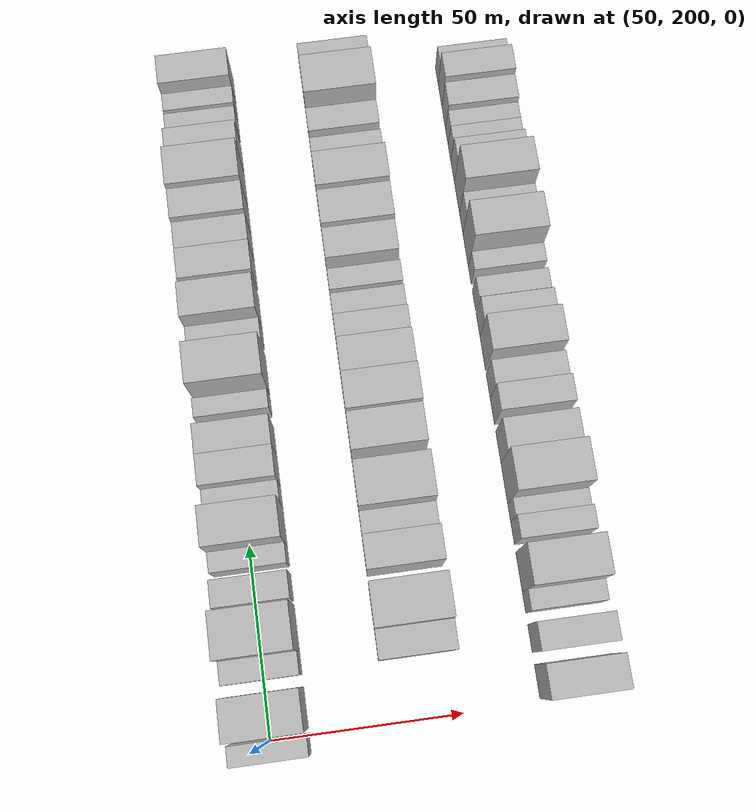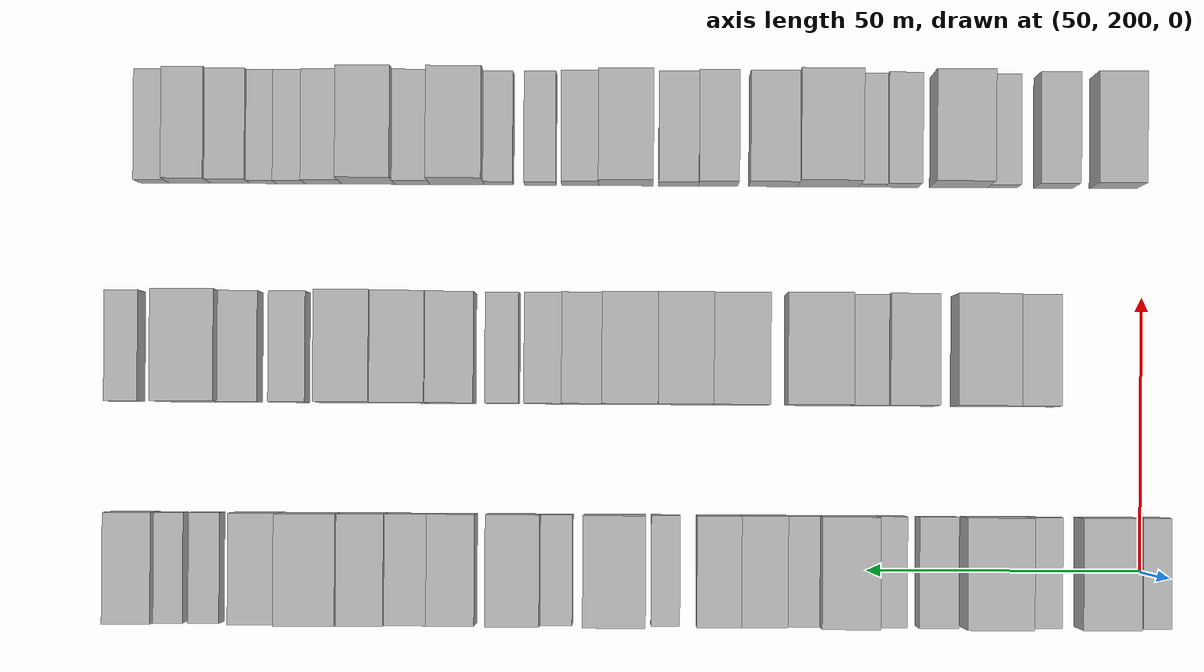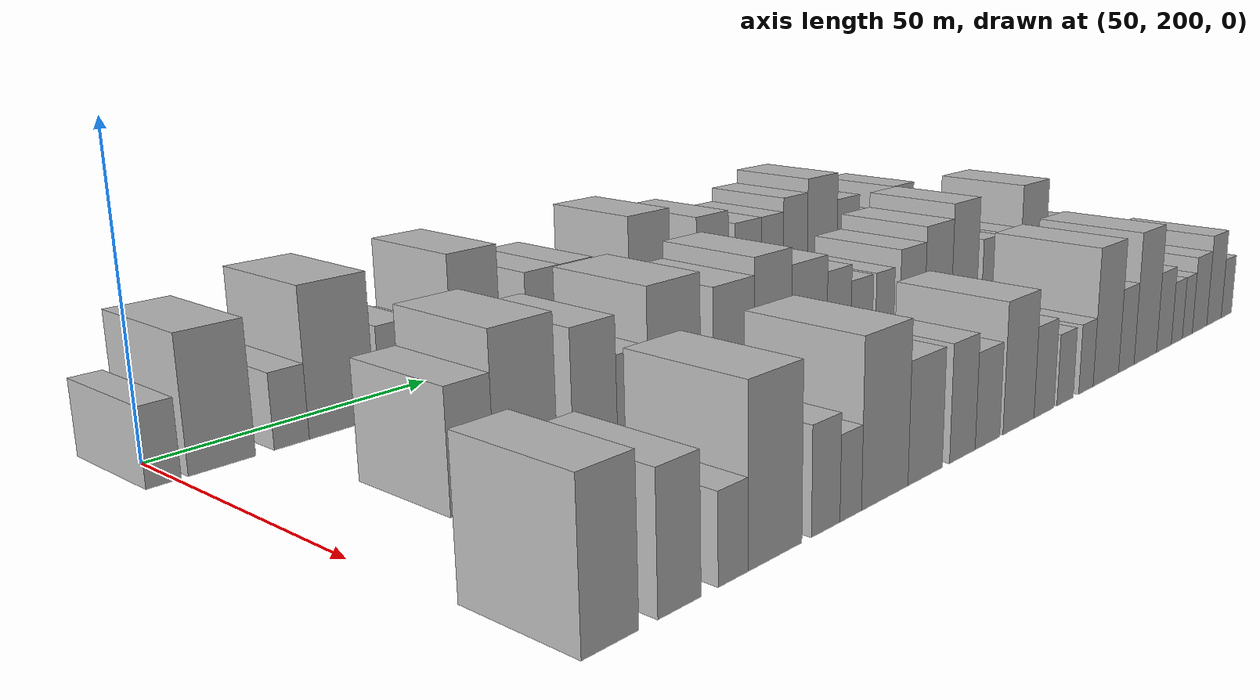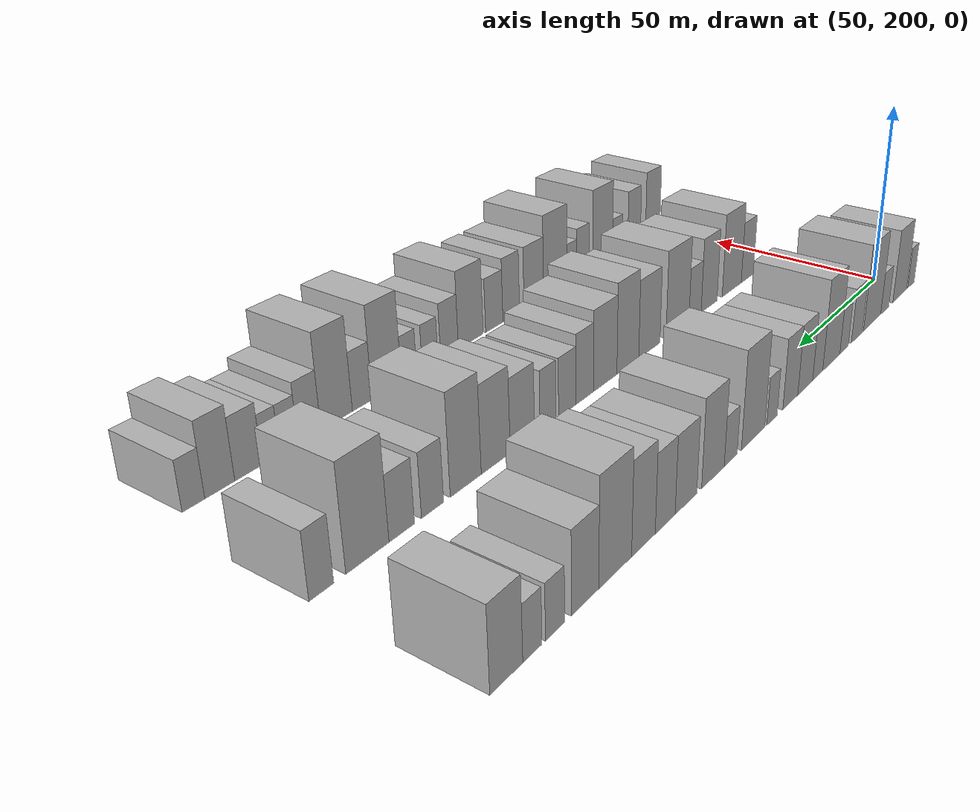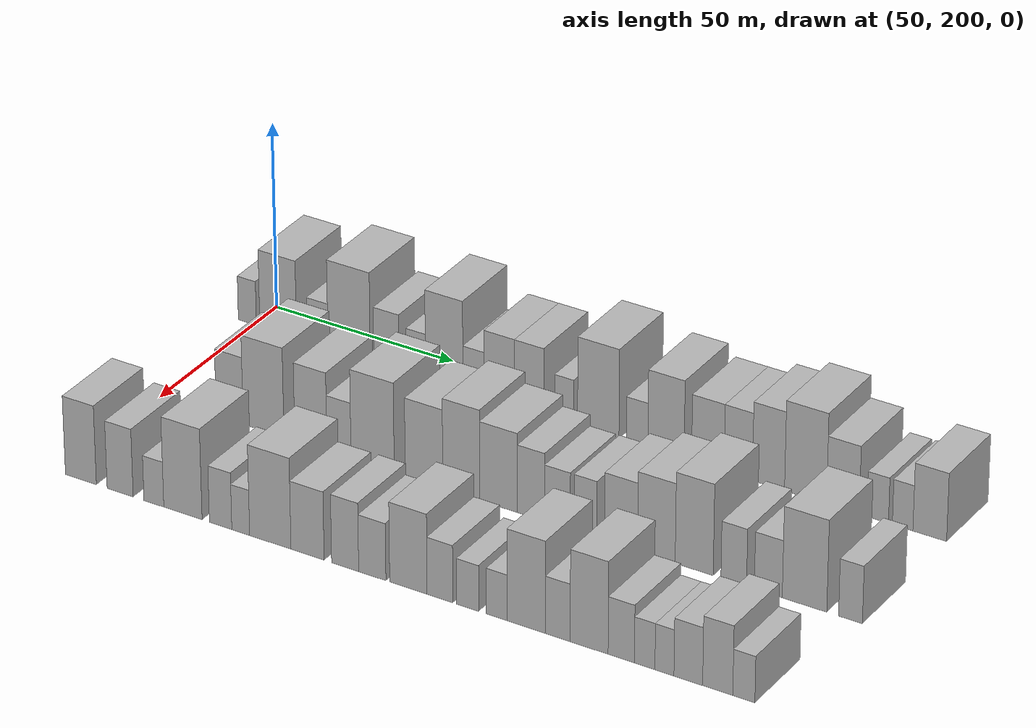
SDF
<sdf version="1.6">
 <world name="default">
  <model name="building_67">
   <static>1</static>
   <pose>50.0000 198.0790 0 0.000000 0.000000 0.000000</pose>
   <link name="link">
    <pose>0 0 6.00 0 0 0</pose>
    <collision name="collision"><geometry><box><size>20.0000 5.1604 12.0000</size></box></geometry></collision>
    <visual name="visual">
     <cast_shadows>0</cast_shadows>
     <geometry><box><size>20.0000 5.1604 12.0000</size></box></geometry>
     <material>
      <script>
       <uri>model://HANNAS_wall/materials/scripts</uri>
       <uri>model://HANNAS_wall/materials/textures</uri>
       <name>vrc/HANNAS_wall</name>
      </script>
     </material>
    </visual>
   </link>
  </model>
  <model name="building_68">
   <static>1</static>
   <pose>50.0000 206.9071 0 0.000000 0.000000 0.000000</pose>
   <link name="link">
    <pose>0 0 10.50 0 0 0</pose>
    <collision name="collision"><geometry><box><size>20.0000 10.4958 21.0000</size></box></geometry></collision>
    <visual name="visual">
     <cast_shadows>0</cast_shadows>
     <geometry><box><size>20.0000 10.4958 21.0000</size></box></geometry>
     <material>
      <script>
       <uri>model://HANNAS_wall/materials/scripts</uri>
       <uri>model://HANNAS_wall/materials/textures</uri>
       <name>vrc/HANNAS_wall</name>
      </script>
     </material>
    </visual>
   </link>
  </model>
  <model name="building_69">
   <static>1</static>
   <pose>50.0000 218.1254 0 0.000000 0.000000 0.000000</pose>
   <link name="link">
    <pose>0 0 6.00 0 0 0</pose>
    <collision name="collision"><geometry><box><size>20.0000 5.9407 12.0000</size></box></geometry></collision>
    <visual name="visual">
     <cast_shadows>0</cast_shadows>
     <geometry><box><size>20.0000 5.9407 12.0000</size></box></geometry>
     <material>
      <script>
       <uri>model://HANNAS_wall/materials/scripts</uri>
       <uri>model://HANNAS_wall/materials/textures</uri>
       <name>vrc/HANNAS_wall</name>
      </script>
     </material>
    </visual>
   </link>
  </model>
  <model name="building_70">
   <static>1</static>
   <pose>50.0000 227.0674 0 0.000000 0.000000 0.000000</pose>
   <link name="link">
    <pose>0 0 12.00 0 0 0</pose>
    <collision name="collision"><geometry><box><size>20.0000 11.9434 24.0000</size></box></geometry></collision>
    <visual name="visual">
     <cast_shadows>0</cast_shadows>
     <geometry><box><size>20.0000 11.9434 24.0000</size></box></geometry>
     <material>
      <script>
       <uri>model://HANNAS_wall/materials/scripts</uri>
       <uri>model://HANNAS_wall/materials/textures</uri>
       <name>vrc/HANNAS_wall</name>
      </script>
     </material>
    </visual>
   </link>
  </model>
  <model name="building_71">
   <static>1</static>
   <pose>50.0000 237.5869 0 0.000000 0.000000 0.000000</pose>
   <link name="link">
    <pose>0 0 7.50 0 0 0</pose>
    <collision name="collision"><geometry><box><size>20.0000 7.0956 15.0000</size></box></geometry></collision>
    <visual name="visual">
     <cast_shadows>0</cast_shadows>
     <geometry><box><size>20.0000 7.0956 15.0000</size></box></geometry>
     <material>
      <script>
       <uri>model://HANNAS_wall/materials/scripts</uri>
       <uri>model://HANNAS_wall/materials/textures</uri>
       <name>vrc/HANNAS_wall</name>
      </script>
     </material>
    </visual>
   </link>
  </model>
  <model name="building_72">
   <static>1</static>
   <pose>50.0000 245.8186 0 0.000000 0.000000 0.000000</pose>
   <link name="link">
    <pose>0 0 6.00 0 0 0</pose>
    <collision name="collision"><geometry><box><size>20.0000 5.3678 12.0000</size></box></geometry></collision>
    <visual name="visual">
     <cast_shadows>0</cast_shadows>
     <geometry><box><size>20.0000 5.3678 12.0000</size></box></geometry>
     <material>
      <script>
       <uri>model://HANNAS_wall/materials/scripts</uri>
       <uri>model://HANNAS_wall/materials/textures</uri>
       <name>vrc/HANNAS_wall</name>
      </script>
     </material>
    </visual>
   </link>
  </model>
  <model name="building_73">
   <static>1</static>
   <pose>50.0000 253.7035 0 0.000000 0.000000 0.000000</pose>
   <link name="link">
    <pose>0 0 12.00 0 0 0</pose>
    <collision name="collision"><geometry><box><size>20.0000 10.4022 24.0000</size></box></geometry></collision>
    <visual name="visual">
     <cast_shadows>0</cast_shadows>
     <geometry><box><size>20.0000 10.4022 24.0000</size></box></geometry>
     <material>
      <script>
       <uri>model://HANNAS_wall/materials/scripts</uri>
       <uri>model://HANNAS_wall/materials/textures</uri>
       <name>vrc/HANNAS_wall</name>
      </script>
     </material>
    </visual>
   </link>
  </model>
  <model name="building_74">
   <static>1</static>
   <pose>50.0000 261.8528 0 0.000000 0.000000 0.000000</pose>
   <link name="link">
    <pose>0 0 6.00 0 0 0</pose>
    <collision name="collision"><geometry><box><size>20.0000 5.8964 12.0000</size></box></geometry></collision>
    <visual name="visual">
     <cast_shadows>0</cast_shadows>
     <geometry><box><size>20.0000 5.8964 12.0000</size></box></geometry>
     <material>
      <script>
       <uri>model://HANNAS_wall/materials/scripts</uri>
       <uri>model://HANNAS_wall/materials/textures</uri>
       <name>vrc/HANNAS_wall</name>
      </script>
     </material>
    </visual>
   </link>
  </model>
  <model name="building_75">
   <static>1</static>
   <pose>50.0000 268.9595 0 0.000000 0.000000 0.000000</pose>
   <link name="link">
    <pose>0 0 9.00 0 0 0</pose>
    <collision name="collision"><geometry><box><size>20.0000 8.3169 18.0000</size></box></geometry></collision>
    <visual name="visual">
     <cast_shadows>0</cast_shadows>
     <geometry><box><size>20.0000 8.3169 18.0000</size></box></geometry>
     <material>
      <script>
       <uri>model://HANNAS_wall/materials/scripts</uri>
       <uri>model://HANNAS_wall/materials/textures</uri>
       <name>vrc/HANNAS_wall</name>
      </script>
     </material>
    </visual>
   </link>
  </model>
  <model name="building_76">
   <static>1</static>
   <pose>50.0000 277.1229 0 0.000000 0.000000 0.000000</pose>
   <link name="link">
    <pose>0 0 9.00 0 0 0</pose>
    <collision name="collision"><geometry><box><size>20.0000 8.0100 18.0000</size></box></geometry></collision>
    <visual name="visual">
     <cast_shadows>0</cast_shadows>
     <geometry><box><size>20.0000 8.0100 18.0000</size></box></geometry>
     <material>
      <script>
       <uri>model://HANNAS_wall/materials/scripts</uri>
       <uri>model://HANNAS_wall/materials/textures</uri>
       <name>vrc/HANNAS_wall</name>
      </script>
     </material>
    </visual>
   </link>
  </model>
  <model name="building_77">
   <static>1</static>
   <pose>50.0000 286.7387 0 0.000000 0.000000 0.000000</pose>
   <link name="link">
    <pose>0 0 6.00 0 0 0</pose>
    <collision name="collision"><geometry><box><size>20.0000 5.2216 12.0000</size></box></geometry></collision>
    <visual name="visual">
     <cast_shadows>0</cast_shadows>
     <geometry><box><size>20.0000 5.2216 12.0000</size></box></geometry>
     <material>
      <script>
       <uri>model://HANNAS_wall/materials/scripts</uri>
       <uri>model://HANNAS_wall/materials/textures</uri>
       <name>vrc/HANNAS_wall</name>
      </script>
     </material>
    </visual>
   </link>
  </model>
  <model name="building_78">
   <static>1</static>
   <pose>50.0000 295.9550 0 0.000000 0.000000 0.000000</pose>
   <link name="link">
    <pose>0 0 12.00 0 0 0</pose>
    <collision name="collision"><geometry><box><size>20.0000 11.2109 24.0000</size></box></geometry></collision>
    <visual name="visual">
     <cast_shadows>0</cast_shadows>
     <geometry><box><size>20.0000 11.2109 24.0000</size></box></geometry>
     <material>
      <script>
       <uri>model://HANNAS_wall/materials/scripts</uri>
       <uri>model://HANNAS_wall/materials/textures</uri>
       <name>vrc/HANNAS_wall</name>
      </script>
     </material>
    </visual>
   </link>
  </model>
  <model name="building_79">
   <static>1</static>
   <pose>50.0000 306.4509 0 0.000000 0.000000 0.000000</pose>
   <link name="link">
    <pose>0 0 6.00 0 0 0</pose>
    <collision name="collision"><geometry><box><size>20.0000 5.7808 12.0000</size></box></geometry></collision>
    <visual name="visual">
     <cast_shadows>0</cast_shadows>
     <geometry><box><size>20.0000 5.7808 12.0000</size></box></geometry>
     <material>
      <script>
       <uri>model://HANNAS_wall/materials/scripts</uri>
       <uri>model://HANNAS_wall/materials/textures</uri>
       <name>vrc/HANNAS_wall</name>
      </script>
     </material>
    </visual>
   </link>
  </model>
  <model name="building_80">
   <static>1</static>
   <pose>50.0000 314.1972 0 0.000000 0.000000 0.000000</pose>
   <link name="link">
    <pose>0 0 10.50 0 0 0</pose>
    <collision name="collision"><geometry><box><size>20.0000 9.7117 21.0000</size></box></geometry></collision>
    <visual name="visual">
     <cast_shadows>0</cast_shadows>
     <geometry><box><size>20.0000 9.7117 21.0000</size></box></geometry>
     <material>
      <script>
       <uri>model://HANNAS_wall/materials/scripts</uri>
       <uri>model://HANNAS_wall/materials/textures</uri>
       <name>vrc/HANNAS_wall</name>
      </script>
     </material>
    </visual>
   </link>
  </model>
  <model name="building_81">
   <static>1</static>
   <pose>50.0000 325.3684 0 0.000000 0.000000 0.000000</pose>
   <link name="link">
    <pose>0 0 9.00 0 0 0</pose>
    <collision name="collision"><geometry><box><size>20.0000 8.6308 18.0000</size></box></geometry></collision>
    <visual name="visual">
     <cast_shadows>0</cast_shadows>
     <geometry><box><size>20.0000 8.6308 18.0000</size></box></geometry>
     <material>
      <script>
       <uri>model://HANNAS_wall/materials/scripts</uri>
       <uri>model://HANNAS_wall/materials/textures</uri>
       <name>vrc/HANNAS_wall</name>
      </script>
     </material>
    </visual>
   </link>
  </model>
  <model name="building_82">
   <static>1</static>
   <pose>50.0000 333.4404 0 0.000000 0.000000 0.000000</pose>
   <link name="link">
    <pose>0 0 9.00 0 0 0</pose>
    <collision name="collision"><geometry><box><size>20.0000 7.5132 18.0000</size></box></geometry></collision>
    <visual name="visual">
     <cast_shadows>0</cast_shadows>
     <geometry><box><size>20.0000 7.5132 18.0000</size></box></geometry>
     <material>
      <script>
       <uri>model://HANNAS_wall/materials/scripts</uri>
       <uri>model://HANNAS_wall/materials/textures</uri>
       <name>vrc/HANNAS_wall</name>
      </script>
     </material>
    </visual>
   </link>
  </model>
  <model name="building_83">
   <static>1</static>
   <pose>50.0000 341.4344 0 0.000000 0.000000 0.000000</pose>
   <link name="link">
    <pose>0 0 10.50 0 0 0</pose>
    <collision name="collision"><geometry><box><size>20.0000 8.4747 21.0000</size></box></geometry></collision>
    <visual name="visual">
     <cast_shadows>0</cast_shadows>
     <geometry><box><size>20.0000 8.4747 21.0000</size></box></geometry>
     <material>
      <script>
       <uri>model://HANNAS_wall/materials/scripts</uri>
       <uri>model://HANNAS_wall/materials/textures</uri>
       <name>vrc/HANNAS_wall</name>
      </script>
     </material>
    </visual>
   </link>
  </model>
  <model name="building_84">
   <static>1</static>
   <pose>50.0000 351.1692 0 0.000000 0.000000 0.000000</pose>
   <link name="link">
    <pose>0 0 12.00 0 0 0</pose>
    <collision name="collision"><geometry><box><size>20.0000 10.9949 24.0000</size></box></geometry></collision>
    <visual name="visual">
     <cast_shadows>0</cast_shadows>
     <geometry><box><size>20.0000 10.9949 24.0000</size></box></geometry>
     <material>
      <script>
       <uri>model://HANNAS_wall/materials/scripts</uri>
       <uri>model://HANNAS_wall/materials/textures</uri>
       <name>vrc/HANNAS_wall</name>
      </script>
     </material>
    </visual>
   </link>
  </model>
  <model name="building_85">
   <static>1</static>
   <pose>50.0000 360.9303 0 0.000000 0.000000 0.000000</pose>
   <link name="link">
    <pose>0 0 9.00 0 0 0</pose>
    <collision name="collision"><geometry><box><size>20.0000 8.5272 18.0000</size></box></geometry></collision>
    <visual name="visual">
     <cast_shadows>0</cast_shadows>
     <geometry><box><size>20.0000 8.5272 18.0000</size></box></geometry>
     <material>
      <script>
       <uri>model://HANNAS_wall/materials/scripts</uri>
       <uri>model://HANNAS_wall/materials/textures</uri>
       <name>vrc/HANNAS_wall</name>
      </script>
     </material>
    </visual>
   </link>
  </model>
  <model name="building_86">
   <static>1</static>
   <pose>50.0000 369.9797 0 0.000000 0.000000 0.000000</pose>
   <link name="link">
    <pose>0 0 6.00 0 0 0</pose>
    <collision name="collision"><geometry><box><size>20.0000 5.5717 12.0000</size></box></geometry></collision>
    <visual name="visual">
     <cast_shadows>0</cast_shadows>
     <geometry><box><size>20.0000 5.5717 12.0000</size></box></geometry>
     <material>
      <script>
       <uri>model://HANNAS_wall/materials/scripts</uri>
       <uri>model://HANNAS_wall/materials/textures</uri>
       <name>vrc/HANNAS_wall</name>
      </script>
     </material>
    </visual>
   </link>
  </model>
  <model name="building_87">
   <static>1</static>
   <pose>50.0000 376.4126 0 0.000000 0.000000 0.000000</pose>
   <link name="link">
    <pose>0 0 6.00 0 0 0</pose>
    <collision name="collision"><geometry><box><size>20.0000 5.2940 12.0000</size></box></geometry></collision>
    <visual name="visual">
     <cast_shadows>0</cast_shadows>
     <geometry><box><size>20.0000 5.2940 12.0000</size></box></geometry>
     <material>
      <script>
       <uri>model://HANNAS_wall/materials/scripts</uri>
       <uri>model://HANNAS_wall/materials/textures</uri>
       <name>vrc/HANNAS_wall</name>
      </script>
     </material>
    </visual>
   </link>
  </model>
  <model name="building_88">
   <static>1</static>
   <pose>50.0000 383.3856 0 0.000000 0.000000 0.000000</pose>
   <link name="link">
    <pose>0 0 9.00 0 0 0</pose>
    <collision name="collision"><geometry><box><size>20.0000 8.6522 18.0000</size></box></geometry></collision>
    <visual name="visual">
     <cast_shadows>0</cast_shadows>
     <geometry><box><size>20.0000 8.6522 18.0000</size></box></geometry>
     <material>
      <script>
       <uri>model://HANNAS_wall/materials/scripts</uri>
       <uri>model://HANNAS_wall/materials/textures</uri>
       <name>vrc/HANNAS_wall</name>
      </script>
     </material>
    </visual>
   </link>
  </model>
  <model name="building_145">
   <static>1</static>
   <pose>90.0000 219.6867 0 0.000000 0.000000 0.000000</pose>
   <link name="link">
    <pose>0 0 9.00 0 0 0</pose>
    <collision name="collision"><geometry><box><size>20.0000 7.5562 18.0000</size></box></geometry></collision>
    <visual name="visual">
     <cast_shadows>0</cast_shadows>
     <geometry><box><size>20.0000 7.5562 18.0000</size></box></geometry>
     <material>
      <script>
       <uri>model://HANNAS_wall/materials/scripts</uri>
       <uri>model://HANNAS_wall/materials/textures</uri>
       <name>vrc/HANNAS_wall</name>
      </script>
     </material>
    </visual>
   </link>
  </model>
  <model name="building_146">
   <static>1</static>
   <pose>90.0000 229.1508 0 0.000000 0.000000 0.000000</pose>
   <link name="link">
    <pose>0 0 12.00 0 0 0</pose>
    <collision name="collision"><geometry><box><size>20.0000 11.3722 24.0000</size></box></geometry></collision>
    <visual name="visual">
     <cast_shadows>0</cast_shadows>
     <geometry><box><size>20.0000 11.3722 24.0000</size></box></geometry>
     <material>
      <script>
       <uri>model://HANNAS_wall/materials/scripts</uri>
       <uri>model://HANNAS_wall/materials/textures</uri>
       <name>vrc/HANNAS_wall</name>
      </script>
     </material>
    </visual>
   </link>
  </model>
  <model name="building_147">
   <static>1</static>
   <pose>90.0000 242.2821 0 0.000000 0.000000 0.000000</pose>
   <link name="link">
    <pose>0 0 10.50 0 0 0</pose>
    <collision name="collision"><geometry><box><size>20.0000 8.8903 21.0000</size></box></geometry></collision>
    <visual name="visual">
     <cast_shadows>0</cast_shadows>
     <geometry><box><size>20.0000 8.8903 21.0000</size></box></geometry>
     <material>
      <script>
       <uri>model://HANNAS_wall/materials/scripts</uri>
       <uri>model://HANNAS_wall/materials/textures</uri>
       <name>vrc/HANNAS_wall</name>
      </script>
     </material>
    </visual>
   </link>
  </model>
  <model name="building_148">
   <static>1</static>
   <pose>90.0000 250.0361 0 0.000000 0.000000 0.000000</pose>
   <link name="link">
    <pose>0 0 7.50 0 0 0</pose>
    <collision name="collision"><geometry><box><size>20.0000 6.6176 15.0000</size></box></geometry></collision>
    <visual name="visual">
     <cast_shadows>0</cast_shadows>
     <geometry><box><size>20.0000 6.6176 15.0000</size></box></geometry>
     <material>
      <script>
       <uri>model://HANNAS_wall/materials/scripts</uri>
       <uri>model://HANNAS_wall/materials/textures</uri>
       <name>vrc/HANNAS_wall</name>
      </script>
     </material>
    </visual>
   </link>
  </model>
  <model name="building_149">
   <static>1</static>
   <pose>90.0000 259.2596 0 0.000000 0.000000 0.000000</pose>
   <link name="link">
    <pose>0 0 12.00 0 0 0</pose>
    <collision name="collision"><geometry><box><size>20.0000 11.8294 24.0000</size></box></geometry></collision>
    <visual name="visual">
     <cast_shadows>0</cast_shadows>
     <geometry><box><size>20.0000 11.8294 24.0000</size></box></geometry>
     <material>
      <script>
       <uri>model://HANNAS_wall/materials/scripts</uri>
       <uri>model://HANNAS_wall/materials/textures</uri>
       <name>vrc/HANNAS_wall</name>
      </script>
     </material>
    </visual>
   </link>
  </model>
  <model name="building_150">
   <static>1</static>
   <pose>90.0000 273.2642 0 0.000000 0.000000 0.000000</pose>
   <link name="link">
    <pose>0 0 10.50 0 0 0</pose>
    <collision name="collision"><geometry><box><size>20.0000 10.1799 21.0000</size></box></geometry></collision>
    <visual name="visual">
     <cast_shadows>0</cast_shadows>
     <geometry><box><size>20.0000 10.1799 21.0000</size></box></geometry>
     <material>
      <script>
       <uri>model://HANNAS_wall/materials/scripts</uri>
       <uri>model://HANNAS_wall/materials/textures</uri>
       <name>vrc/HANNAS_wall</name>
      </script>
     </material>
    </visual>
   </link>
  </model>
  <model name="building_151">
   <static>1</static>
   <pose>90.0000 283.3267 0 0.000000 0.000000 0.000000</pose>
   <link name="link">
    <pose>0 0 12.00 0 0 0</pose>
    <collision name="collision"><geometry><box><size>20.0000 9.9450 24.0000</size></box></geometry></collision>
    <visual name="visual">
     <cast_shadows>0</cast_shadows>
     <geometry><box><size>20.0000 9.9450 24.0000</size></box></geometry>
     <material>
      <script>
       <uri>model://HANNAS_wall/materials/scripts</uri>
       <uri>model://HANNAS_wall/materials/textures</uri>
       <name>vrc/HANNAS_wall</name>
      </script>
     </material>
    </visual>
   </link>
  </model>
  <model name="building_152">
   <static>1</static>
   <pose>90.0000 293.3557 0 0.000000 0.000000 0.000000</pose>
   <link name="link">
    <pose>0 0 10.50 0 0 0</pose>
    <collision name="collision"><geometry><box><size>20.0000 10.1130 21.0000</size></box></geometry></collision>
    <visual name="visual">
     <cast_shadows>0</cast_shadows>
     <geometry><box><size>20.0000 10.1130 21.0000</size></box></geometry>
     <material>
      <script>
       <uri>model://HANNAS_wall/materials/scripts</uri>
       <uri>model://HANNAS_wall/materials/textures</uri>
       <name>vrc/HANNAS_wall</name>
      </script>
     </material>
    </visual>
   </link>
  </model>
  <model name="building_153">
   <static>1</static>
   <pose>90.0000 302.0334 0 0.000000 0.000000 0.000000</pose>
   <link name="link">
    <pose>0 0 9.00 0 0 0</pose>
    <collision name="collision"><geometry><box><size>20.0000 7.2425 18.0000</size></box></geometry></collision>
    <visual name="visual">
     <cast_shadows>0</cast_shadows>
     <geometry><box><size>20.0000 7.2425 18.0000</size></box></geometry>
     <material>
      <script>
       <uri>model://HANNAS_wall/materials/scripts</uri>
       <uri>model://HANNAS_wall/materials/textures</uri>
       <name>vrc/HANNAS_wall</name>
      </script>
     </material>
    </visual>
   </link>
  </model>
  <model name="building_154">
   <static>1</static>
   <pose>90.0000 309.0548 0 0.000000 0.000000 0.000000</pose>
   <link name="link">
    <pose>0 0 7.50 0 0 0</pose>
    <collision name="collision"><geometry><box><size>20.0000 6.8001 15.0000</size></box></geometry></collision>
    <visual name="visual">
     <cast_shadows>0</cast_shadows>
     <geometry><box><size>20.0000 6.8001 15.0000</size></box></geometry>
     <material>
      <script>
       <uri>model://HANNAS_wall/materials/scripts</uri>
       <uri>model://HANNAS_wall/materials/textures</uri>
       <name>vrc/HANNAS_wall</name>
      </script>
     </material>
    </visual>
   </link>
  </model>
  <model name="building_155">
   <static>1</static>
   <pose>90.0000 316.4659 0 0.000000 0.000000 0.000000</pose>
   <link name="link">
    <pose>0 0 7.50 0 0 0</pose>
    <collision name="collision"><geometry><box><size>20.0000 6.0222 15.0000</size></box></geometry></collision>
    <visual name="visual">
     <cast_shadows>0</cast_shadows>
     <geometry><box><size>20.0000 6.0222 15.0000</size></box></geometry>
     <material>
      <script>
       <uri>model://HANNAS_wall/materials/scripts</uri>
       <uri>model://HANNAS_wall/materials/textures</uri>
       <name>vrc/HANNAS_wall</name>
      </script>
     </material>
    </visual>
   </link>
  </model>
  <model name="building_156">
   <static>1</static>
   <pose>90.0000 325.8380 0 0.000000 0.000000 0.000000</pose>
   <link name="link">
    <pose>0 0 9.00 0 0 0</pose>
    <collision name="collision"><geometry><box><size>20.0000 8.7220 18.0000</size></box></geometry></collision>
    <visual name="visual">
     <cast_shadows>0</cast_shadows>
     <geometry><box><size>20.0000 8.7220 18.0000</size></box></geometry>
     <material>
      <script>
       <uri>model://HANNAS_wall/materials/scripts</uri>
       <uri>model://HANNAS_wall/materials/textures</uri>
       <name>vrc/HANNAS_wall</name>
      </script>
     </material>
    </visual>
   </link>
  </model>
  <model name="building_157">
   <static>1</static>
   <pose>90.0000 335.0958 0 0.000000 0.000000 0.000000</pose>
   <link name="link">
    <pose>0 0 10.50 0 0 0</pose>
    <collision name="collision"><geometry><box><size>20.0000 9.7935 21.0000</size></box></geometry></collision>
    <visual name="visual">
     <cast_shadows>0</cast_shadows>
     <geometry><box><size>20.0000 9.7935 21.0000</size></box></geometry>
     <material>
      <script>
       <uri>model://HANNAS_wall/materials/scripts</uri>
       <uri>model://HANNAS_wall/materials/textures</uri>
       <name>vrc/HANNAS_wall</name>
      </script>
     </material>
    </visual>
   </link>
  </model>
  <model name="building_158">
   <static>1</static>
   <pose>90.0000 344.9257 0 0.000000 0.000000 0.000000</pose>
   <link name="link">
    <pose>0 0 12.00 0 0 0</pose>
    <collision name="collision"><geometry><box><size>20.0000 9.8664 24.0000</size></box></geometry></collision>
    <visual name="visual">
     <cast_shadows>0</cast_shadows>
     <geometry><box><size>20.0000 9.8664 24.0000</size></box></geometry>
     <material>
      <script>
       <uri>model://HANNAS_wall/materials/scripts</uri>
       <uri>model://HANNAS_wall/materials/textures</uri>
       <name>vrc/HANNAS_wall</name>
      </script>
     </material>
    </visual>
   </link>
  </model>
  <model name="building_159">
   <static>1</static>
   <pose>90.0000 355.1624 0 0.000000 0.000000 0.000000</pose>
   <link name="link">
    <pose>0 0 7.50 0 0 0</pose>
    <collision name="collision"><geometry><box><size>20.0000 6.6070 15.0000</size></box></geometry></collision>
    <visual name="visual">
     <cast_shadows>0</cast_shadows>
     <geometry><box><size>20.0000 6.6070 15.0000</size></box></geometry>
     <material>
      <script>
       <uri>model://HANNAS_wall/materials/scripts</uri>
       <uri>model://HANNAS_wall/materials/textures</uri>
       <name>vrc/HANNAS_wall</name>
      </script>
     </material>
    </visual>
   </link>
  </model>
  <model name="building_160">
   <static>1</static>
   <pose>90.0000 364.0405 0 0.000000 0.000000 0.000000</pose>
   <link name="link">
    <pose>0 0 7.50 0 0 0</pose>
    <collision name="collision"><geometry><box><size>20.0000 7.1493 15.0000</size></box></geometry></collision>
    <visual name="visual">
     <cast_shadows>0</cast_shadows>
     <geometry><box><size>20.0000 7.1493 15.0000</size></box></geometry>
     <material>
      <script>
       <uri>model://HANNAS_wall/materials/scripts</uri>
       <uri>model://HANNAS_wall/materials/textures</uri>
       <name>vrc/HANNAS_wall</name>
      </script>
     </material>
    </visual>
   </link>
  </model>
  <model name="building_161">
   <static>1</static>
   <pose>90.0000 373.2897 0 0.000000 0.000000 0.000000</pose>
   <link name="link">
    <pose>0 0 12.00 0 0 0</pose>
    <collision name="collision"><geometry><box><size>20.0000 11.3489 24.0000</size></box></geometry></collision>
    <visual name="visual">
     <cast_shadows>0</cast_shadows>
     <geometry><box><size>20.0000 11.3489 24.0000</size></box></geometry>
     <material>
      <script>
       <uri>model://HANNAS_wall/materials/scripts</uri>
       <uri>model://HANNAS_wall/materials/textures</uri>
       <name>vrc/HANNAS_wall</name>
      </script>
     </material>
    </visual>
   </link>
  </model>
  <model name="building_162">
   <static>1</static>
   <pose>90.0000 384.9756 0 0.000000 0.000000 0.000000</pose>
   <link name="link">
    <pose>0 0 7.50 0 0 0</pose>
    <collision name="collision"><geometry><box><size>20.0000 6.0229 15.0000</size></box></geometry></collision>
    <visual name="visual">
     <cast_shadows>0</cast_shadows>
     <geometry><box><size>20.0000 6.0229 15.0000</size></box></geometry>
     <material>
      <script>
       <uri>model://HANNAS_wall/materials/scripts</uri>
       <uri>model://HANNAS_wall/materials/textures</uri>
       <name>vrc/HANNAS_wall</name>
      </script>
     </material>
    </visual>
   </link>
  </model>
  <model name="building_231">
   <static>1</static>
   <pose>130.0000 205.3050 0 0.000000 0.000000 0.000000</pose>
   <link name="link">
    <pose>0 0 10.50 0 0 0</pose>
    <collision name="collision"><geometry><box><size>20.0000 8.6312 21.0000</size></box></geometry></collision>
    <visual name="visual">
     <cast_shadows>0</cast_shadows>
     <geometry><box><size>20.0000 8.6312 21.0000</size></box></geometry>
     <material>
      <script>
       <uri>model://HANNAS_wall/materials/scripts</uri>
       <uri>model://HANNAS_wall/materials/textures</uri>
       <name>vrc/HANNAS_wall</name>
      </script>
     </material>
    </visual>
   </link>
  </model>
  <model name="building_232">
   <static>1</static>
   <pose>130.0000 216.2320 0 0.000000 0.000000 0.000000</pose>
   <link name="link">
    <pose>0 0 9.00 0 0 0</pose>
    <collision name="collision"><geometry><box><size>20.0000 7.2227 18.0000</size></box></geometry></collision>
    <visual name="visual">
     <cast_shadows>0</cast_shadows>
     <geometry><box><size>20.0000 7.2227 18.0000</size></box></geometry>
     <material>
      <script>
       <uri>model://HANNAS_wall/materials/scripts</uri>
       <uri>model://HANNAS_wall/materials/textures</uri>
       <name>vrc/HANNAS_wall</name>
      </script>
     </material>
    </visual>
   </link>
  </model>
  <model name="building_233">
   <static>1</static>
   <pose>130.0000 225.5727 0 0.000000 0.000000 0.000000</pose>
   <link name="link">
    <pose>0 0 6.00 0 0 0</pose>
    <collision name="collision"><geometry><box><size>20.0000 5.4587 12.0000</size></box></geometry></collision>
    <visual name="visual">
     <cast_shadows>0</cast_shadows>
     <geometry><box><size>20.0000 5.4587 12.0000</size></box></geometry>
     <material>
      <script>
       <uri>model://HANNAS_wall/materials/scripts</uri>
       <uri>model://HANNAS_wall/materials/textures</uri>
       <name>vrc/HANNAS_wall</name>
      </script>
     </material>
    </visual>
   </link>
  </model>
  <model name="building_234">
   <static>1</static>
   <pose>130.0000 233.5647 0 0.000000 0.000000 0.000000</pose>
   <link name="link">
    <pose>0 0 12.00 0 0 0</pose>
    <collision name="collision"><geometry><box><size>20.0000 10.5253 24.0000</size></box></geometry></collision>
    <visual name="visual">
     <cast_shadows>0</cast_shadows>
     <geometry><box><size>20.0000 10.5253 24.0000</size></box></geometry>
     <material>
      <script>
       <uri>model://HANNAS_wall/materials/scripts</uri>
       <uri>model://HANNAS_wall/materials/textures</uri>
       <name>vrc/HANNAS_wall</name>
      </script>
     </material>
    </visual>
   </link>
  </model>
  <model name="building_235">
   <static>1</static>
   <pose>130.0000 243.8853 0 0.000000 0.000000 0.000000</pose>
   <link name="link">
    <pose>0 0 7.50 0 0 0</pose>
    <collision name="collision"><geometry><box><size>20.0000 6.1160 15.0000</size></box></geometry></collision>
    <visual name="visual">
     <cast_shadows>0</cast_shadows>
     <geometry><box><size>20.0000 6.1160 15.0000</size></box></geometry>
     <material>
      <script>
       <uri>model://HANNAS_wall/materials/scripts</uri>
       <uri>model://HANNAS_wall/materials/textures</uri>
       <name>vrc/HANNAS_wall</name>
      </script>
     </material>
    </visual>
   </link>
  </model>
  <model name="building_236">
   <static>1</static>
   <pose>130.0000 249.3697 0 0.000000 0.000000 0.000000</pose>
   <link name="link">
    <pose>0 0 6.00 0 0 0</pose>
    <collision name="collision"><geometry><box><size>20.0000 4.8527 12.0000</size></box></geometry></collision>
    <visual name="visual">
     <cast_shadows>0</cast_shadows>
     <geometry><box><size>20.0000 4.8527 12.0000</size></box></geometry>
     <material>
      <script>
       <uri>model://HANNAS_wall/materials/scripts</uri>
       <uri>model://HANNAS_wall/materials/textures</uri>
       <name>vrc/HANNAS_wall</name>
      </script>
     </material>
    </visual>
   </link>
  </model>
  <model name="building_237">
   <static>1</static>
   <pose>130.0000 257.3884 0 0.000000 0.000000 0.000000</pose>
   <link name="link">
    <pose>0 0 12.00 0 0 0</pose>
    <collision name="collision"><geometry><box><size>20.0000 11.1847 24.0000</size></box></geometry></collision>
    <visual name="visual">
     <cast_shadows>0</cast_shadows>
     <geometry><box><size>20.0000 11.1847 24.0000</size></box></geometry>
     <material>
      <script>
       <uri>model://HANNAS_wall/materials/scripts</uri>
       <uri>model://HANNAS_wall/materials/textures</uri>
       <name>vrc/HANNAS_wall</name>
      </script>
     </material>
    </visual>
   </link>
  </model>
  <model name="building_238">
   <static>1</static>
   <pose>130.0000 267.4380 0 0.000000 0.000000 0.000000</pose>
   <link name="link">
    <pose>0 0 9.00 0 0 0</pose>
    <collision name="collision"><geometry><box><size>20.0000 8.9146 18.0000</size></box></geometry></collision>
    <visual name="visual">
     <cast_shadows>0</cast_shadows>
     <geometry><box><size>20.0000 8.9146 18.0000</size></box></geometry>
     <material>
      <script>
       <uri>model://HANNAS_wall/materials/scripts</uri>
       <uri>model://HANNAS_wall/materials/textures</uri>
       <name>vrc/HANNAS_wall</name>
      </script>
     </material>
    </visual>
   </link>
  </model>
  <model name="building_239">
   <static>1</static>
   <pose>130.0000 277.5089 0 0.000000 0.000000 0.000000</pose>
   <link name="link">
    <pose>0 0 9.00 0 0 0</pose>
    <collision name="collision"><geometry><box><size>20.0000 7.2271 18.0000</size></box></geometry></collision>
    <visual name="visual">
     <cast_shadows>0</cast_shadows>
     <geometry><box><size>20.0000 7.2271 18.0000</size></box></geometry>
     <material>
      <script>
       <uri>model://HANNAS_wall/materials/scripts</uri>
       <uri>model://HANNAS_wall/materials/textures</uri>
       <name>vrc/HANNAS_wall</name>
      </script>
     </material>
    </visual>
   </link>
  </model>
  <model name="building_240">
   <static>1</static>
   <pose>130.0000 284.7494 0 0.000000 0.000000 0.000000</pose>
   <link name="link">
    <pose>0 0 7.50 0 0 0</pose>
    <collision name="collision"><geometry><box><size>20.0000 7.2540 15.0000</size></box></geometry></collision>
    <visual name="visual">
     <cast_shadows>0</cast_shadows>
     <geometry><box><size>20.0000 7.2540 15.0000</size></box></geometry>
     <material>
      <script>
       <uri>model://HANNAS_wall/materials/scripts</uri>
       <uri>model://HANNAS_wall/materials/textures</uri>
       <name>vrc/HANNAS_wall</name>
      </script>
     </material>
    </visual>
   </link>
  </model>
  <model name="building_241">
   <static>1</static>
   <pose>130.0000 294.3200 0 0.000000 0.000000 0.000000</pose>
   <link name="link">
    <pose>0 0 10.50 0 0 0</pose>
    <collision name="collision"><geometry><box><size>20.0000 9.8872 21.0000</size></box></geometry></collision>
    <visual name="visual">
     <cast_shadows>0</cast_shadows>
     <geometry><box><size>20.0000 9.8872 21.0000</size></box></geometry>
     <material>
      <script>
       <uri>model://HANNAS_wall/materials/scripts</uri>
       <uri>model://HANNAS_wall/materials/textures</uri>
       <name>vrc/HANNAS_wall</name>
      </script>
     </material>
    </visual>
   </link>
  </model>
  <model name="building_242">
   <static>1</static>
   <pose>130.0000 302.6471 0 0.000000 0.000000 0.000000</pose>
   <link name="link">
    <pose>0 0 7.50 0 0 0</pose>
    <collision name="collision"><geometry><box><size>20.0000 6.7671 15.0000</size></box></geometry></collision>
    <visual name="visual">
     <cast_shadows>0</cast_shadows>
     <geometry><box><size>20.0000 6.7671 15.0000</size></box></geometry>
     <material>
      <script>
       <uri>model://HANNAS_wall/materials/scripts</uri>
       <uri>model://HANNAS_wall/materials/textures</uri>
       <name>vrc/HANNAS_wall</name>
      </script>
     </material>
    </visual>
   </link>
  </model>
  <model name="building_243">
   <static>1</static>
   <pose>130.0000 309.9198 0 0.000000 0.000000 0.000000</pose>
   <link name="link">
    <pose>0 0 6.00 0 0 0</pose>
    <collision name="collision"><geometry><box><size>20.0000 5.7782 12.0000</size></box></geometry></collision>
    <visual name="visual">
     <cast_shadows>0</cast_shadows>
     <geometry><box><size>20.0000 5.7782 12.0000</size></box></geometry>
     <material>
      <script>
       <uri>model://HANNAS_wall/materials/scripts</uri>
       <uri>model://HANNAS_wall/materials/textures</uri>
       <name>vrc/HANNAS_wall</name>
      </script>
     </material>
    </visual>
   </link>
  </model>
  <model name="building_244">
   <static>1</static>
   <pose>130.0000 317.4957 0 0.000000 0.000000 0.000000</pose>
   <link name="link">
    <pose>0 0 6.00 0 0 0</pose>
    <collision name="collision"><geometry><box><size>20.0000 5.3737 12.0000</size></box></geometry></collision>
    <visual name="visual">
     <cast_shadows>0</cast_shadows>
     <geometry><box><size>20.0000 5.3737 12.0000</size></box></geometry>
     <material>
      <script>
       <uri>model://HANNAS_wall/materials/scripts</uri>
       <uri>model://HANNAS_wall/materials/textures</uri>
       <name>vrc/HANNAS_wall</name>
      </script>
     </material>
    </visual>
   </link>
  </model>
  <model name="building_245">
   <static>1</static>
   <pose>130.0000 325.1567 0 0.000000 0.000000 0.000000</pose>
   <link name="link">
    <pose>0 0 12.00 0 0 0</pose>
    <collision name="collision"><geometry><box><size>20.0000 9.9484 24.0000</size></box></geometry></collision>
    <visual name="visual">
     <cast_shadows>0</cast_shadows>
     <geometry><box><size>20.0000 9.9484 24.0000</size></box></geometry>
     <material>
      <script>
       <uri>model://HANNAS_wall/materials/scripts</uri>
       <uri>model://HANNAS_wall/materials/textures</uri>
       <name>vrc/HANNAS_wall</name>
      </script>
     </material>
    </visual>
   </link>
  </model>
  <model name="building_246">
   <static>1</static>
   <pose>130.0000 333.3262 0 0.000000 0.000000 0.000000</pose>
   <link name="link">
    <pose>0 0 7.50 0 0 0</pose>
    <collision name="collision"><geometry><box><size>20.0000 6.3905 15.0000</size></box></geometry></collision>
    <visual name="visual">
     <cast_shadows>0</cast_shadows>
     <geometry><box><size>20.0000 6.3905 15.0000</size></box></geometry>
     <material>
      <script>
       <uri>model://HANNAS_wall/materials/scripts</uri>
       <uri>model://HANNAS_wall/materials/textures</uri>
       <name>vrc/HANNAS_wall</name>
      </script>
     </material>
    </visual>
   </link>
  </model>
  <model name="building_247">
   <static>1</static>
   <pose>130.0000 341.3855 0 0.000000 0.000000 0.000000</pose>
   <link name="link">
    <pose>0 0 12.00 0 0 0</pose>
    <collision name="collision"><geometry><box><size>20.0000 9.7281 24.0000</size></box></geometry></collision>
    <visual name="visual">
     <cast_shadows>0</cast_shadows>
     <geometry><box><size>20.0000 9.7281 24.0000</size></box></geometry>
     <material>
      <script>
       <uri>model://HANNAS_wall/materials/scripts</uri>
       <uri>model://HANNAS_wall/materials/textures</uri>
       <name>vrc/HANNAS_wall</name>
      </script>
     </material>
    </visual>
   </link>
  </model>
  <model name="building_248">
   <static>1</static>
   <pose>130.0000 349.6071 0 0.000000 0.000000 0.000000</pose>
   <link name="link">
    <pose>0 0 7.50 0 0 0</pose>
    <collision name="collision"><geometry><box><size>20.0000 6.7153 15.0000</size></box></geometry></collision>
    <visual name="visual">
     <cast_shadows>0</cast_shadows>
     <geometry><box><size>20.0000 6.7153 15.0000</size></box></geometry>
     <material>
      <script>
       <uri>model://HANNAS_wall/materials/scripts</uri>
       <uri>model://HANNAS_wall/materials/textures</uri>
       <name>vrc/HANNAS_wall</name>
      </script>
     </material>
    </visual>
   </link>
  </model>
  <model name="building_249">
   <static>1</static>
   <pose>130.0000 355.5751 0 0.000000 0.000000 0.000000</pose>
   <link name="link">
    <pose>0 0 6.00 0 0 0</pose>
    <collision name="collision"><geometry><box><size>20.0000 5.2205 12.0000</size></box></geometry></collision>
    <visual name="visual">
     <cast_shadows>0</cast_shadows>
     <geometry><box><size>20.0000 5.2205 12.0000</size></box></geometry>
     <material>
      <script>
       <uri>model://HANNAS_wall/materials/scripts</uri>
       <uri>model://HANNAS_wall/materials/textures</uri>
       <name>vrc/HANNAS_wall</name>
      </script>
     </material>
    </visual>
   </link>
  </model>
  <model name="building_250">
   <static>1</static>
   <pose>130.0000 360.5936 0 0.000000 0.000000 0.000000</pose>
   <link name="link">
    <pose>0 0 6.00 0 0 0</pose>
    <collision name="collision"><geometry><box><size>20.0000 4.8166 12.0000</size></box></geometry></collision>
    <visual name="visual">
     <cast_shadows>0</cast_shadows>
     <geometry><box><size>20.0000 4.8166 12.0000</size></box></geometry>
     <material>
      <script>
       <uri>model://HANNAS_wall/materials/scripts</uri>
       <uri>model://HANNAS_wall/materials/textures</uri>
       <name>vrc/HANNAS_wall</name>
      </script>
     </material>
    </visual>
   </link>
  </model>
  <model name="building_251">
   <static>1</static>
   <pose>130.0000 366.6238 0 0.000000 0.000000 0.000000</pose>
   <link name="link">
    <pose>0 0 7.50 0 0 0</pose>
    <collision name="collision"><geometry><box><size>20.0000 7.2438 15.0000</size></box></geometry></collision>
    <visual name="visual">
     <cast_shadows>0</cast_shadows>
     <geometry><box><size>20.0000 7.2438 15.0000</size></box></geometry>
     <material>
      <script>
       <uri>model://HANNAS_wall/materials/scripts</uri>
       <uri>model://HANNAS_wall/materials/textures</uri>
       <name>vrc/HANNAS_wall</name>
      </script>
     </material>
    </visual>
   </link>
  </model>
  <model name="building_252">
   <static>1</static>
   <pose>130.0000 374.0325 0 0.000000 0.000000 0.000000</pose>
   <link name="link">
    <pose>0 0 9.00 0 0 0</pose>
    <collision name="collision"><geometry><box><size>20.0000 7.5737 18.0000</size></box></geometry></collision>
    <visual name="visual">
     <cast_shadows>0</cast_shadows>
     <geometry><box><size>20.0000 7.5737 18.0000</size></box></geometry>
     <material>
      <script>
       <uri>model://HANNAS_wall/materials/scripts</uri>
       <uri>model://HANNAS_wall/materials/textures</uri>
       <name>vrc/HANNAS_wall</name>
      </script>
     </material>
    </visual>
   </link>
  </model>
  <model name="building_253">
   <static>1</static>
   <pose>130.0000 380.5825 0 0.000000 0.000000 0.000000</pose>
   <link name="link">
    <pose>0 0 6.00 0 0 0</pose>
    <collision name="collision"><geometry><box><size>20.0000 5.5263 12.0000</size></box></geometry></collision>
    <visual name="visual">
     <cast_shadows>0</cast_shadows>
     <geometry><box><size>20.0000 5.5263 12.0000</size></box></geometry>
     <material>
      <script>
       <uri>model://HANNAS_wall/materials/scripts</uri>
       <uri>model://HANNAS_wall/materials/textures</uri>
       <name>vrc/HANNAS_wall</name>
      </script>
     </material>
    </visual>
   </link>
  </model>
 </world>
</sdf>
